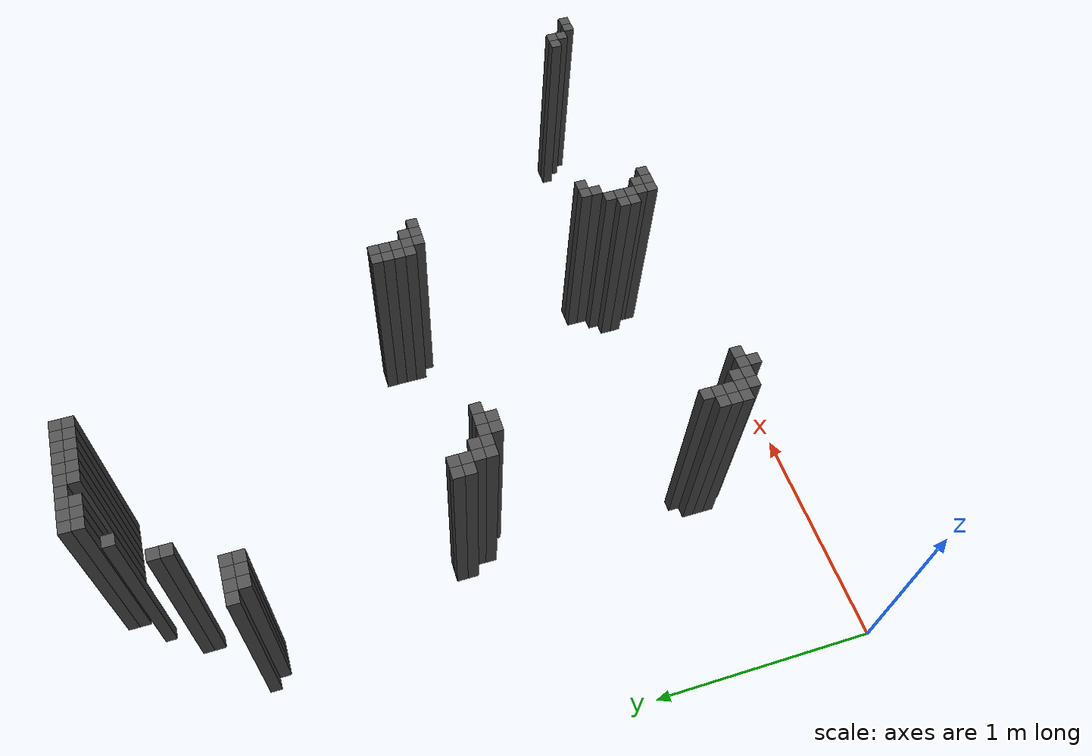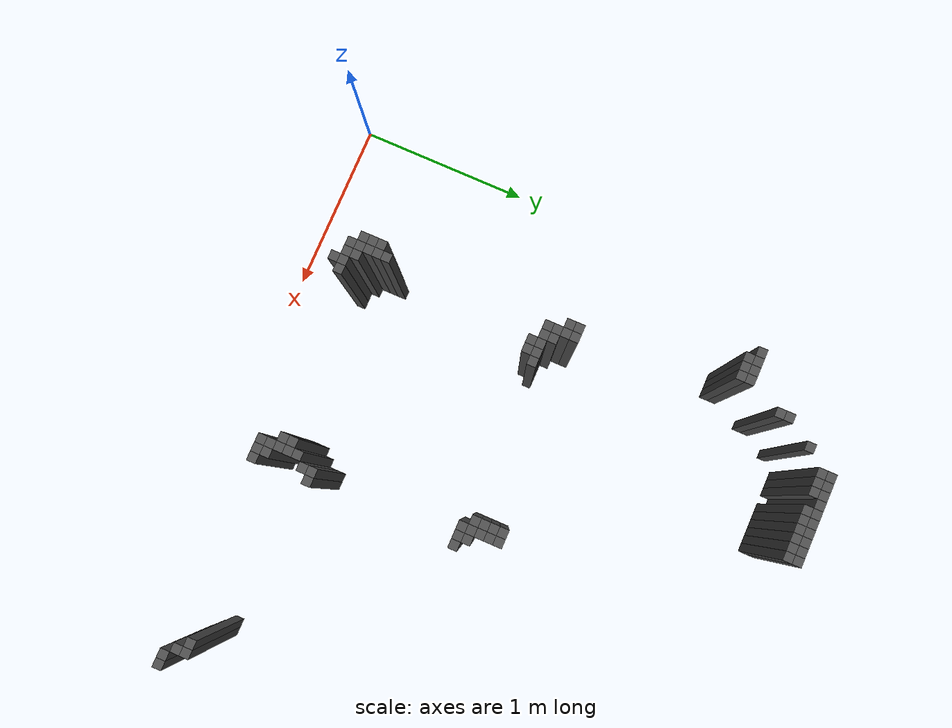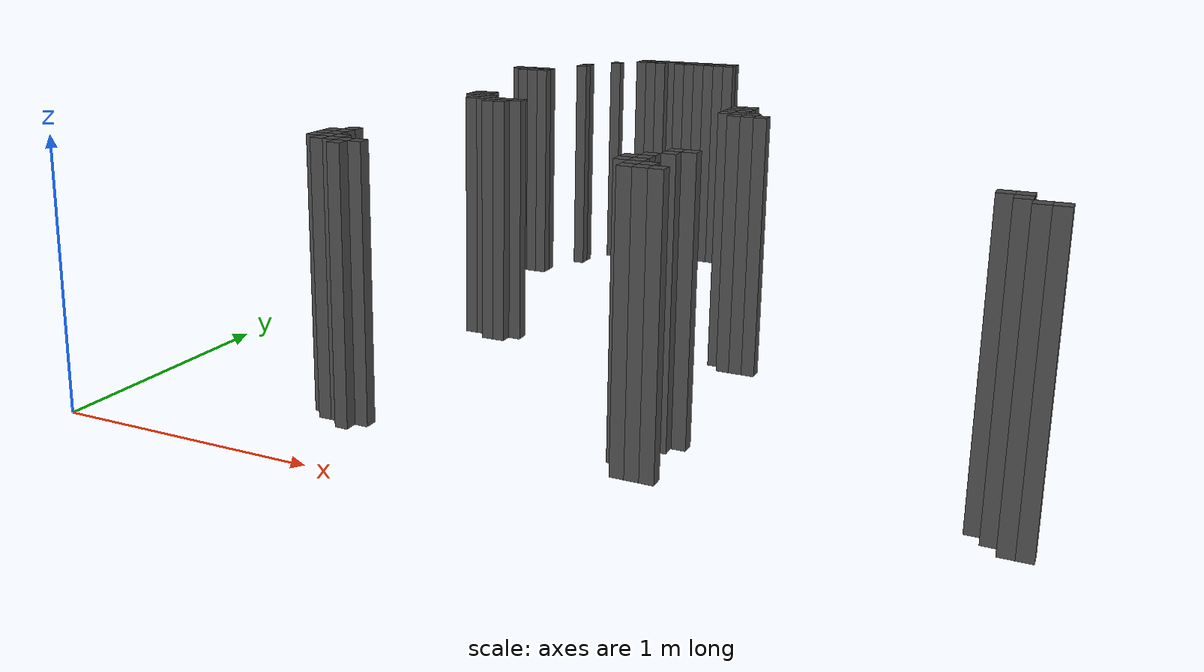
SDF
<sdf version="1.9">
 <world name="house_cleaner">
  <model name="wall_5_43">
   <static>true</static>
   <pose>0.9800 3.0900 0.5 0 0 0</pose>
   <link name="wall_link">
    <collision name="collision"><geometry><box><size>0.05 0.05 1.0</size></box></geometry></collision>
    <visual name="visual">
     <geometry><box><size>0.05 0.05 1.0</size></box></geometry>
     <material><ambient>0.3 0.3 0.3 1</ambient><diffuse>0.3 0.3 0.3 1</diffuse></material>
    </visual>
   </link>
  </model>
  <model name="wall_5_44">
   <static>true</static>
   <pose>1.0300 3.0900 0.5 0 0 0</pose>
   <link name="wall_link">
    <collision name="collision"><geometry><box><size>0.05 0.05 1.0</size></box></geometry></collision>
    <visual name="visual">
     <geometry><box><size>0.05 0.05 1.0</size></box></geometry>
     <material><ambient>0.3 0.3 0.3 1</ambient><diffuse>0.3 0.3 0.3 1</diffuse></material>
    </visual>
   </link>
  </model>
  <model name="wall_5_45">
   <static>true</static>
   <pose>1.0800 3.0900 0.5 0 0 0</pose>
   <link name="wall_link">
    <collision name="collision"><geometry><box><size>0.05 0.05 1.0</size></box></geometry></collision>
    <visual name="visual">
     <geometry><box><size>0.05 0.05 1.0</size></box></geometry>
     <material><ambient>0.3 0.3 0.3 1</ambient><diffuse>0.3 0.3 0.3 1</diffuse></material>
    </visual>
   </link>
  </model>
  <model name="wall_5_46">
   <static>true</static>
   <pose>1.1300 3.0900 0.5 0 0 0</pose>
   <link name="wall_link">
    <collision name="collision"><geometry><box><size>0.05 0.05 1.0</size></box></geometry></collision>
    <visual name="visual">
     <geometry><box><size>0.05 0.05 1.0</size></box></geometry>
     <material><ambient>0.3 0.3 0.3 1</ambient><diffuse>0.3 0.3 0.3 1</diffuse></material>
    </visual>
   </link>
  </model>
  <model name="wall_5_47">
   <static>true</static>
   <pose>1.1800 3.0900 0.5 0 0 0</pose>
   <link name="wall_link">
    <collision name="collision"><geometry><box><size>0.05 0.05 1.0</size></box></geometry></collision>
    <visual name="visual">
     <geometry><box><size>0.05 0.05 1.0</size></box></geometry>
     <material><ambient>0.3 0.3 0.3 1</ambient><diffuse>0.3 0.3 0.3 1</diffuse></material>
    </visual>
   </link>
  </model>
  <model name="wall_5_48">
   <static>true</static>
   <pose>1.2300 3.0900 0.5 0 0 0</pose>
   <link name="wall_link">
    <collision name="collision"><geometry><box><size>0.05 0.05 1.0</size></box></geometry></collision>
    <visual name="visual">
     <geometry><box><size>0.05 0.05 1.0</size></box></geometry>
     <material><ambient>0.3 0.3 0.3 1</ambient><diffuse>0.3 0.3 0.3 1</diffuse></material>
    </visual>
   </link>
  </model>
  <model name="wall_5_49">
   <static>true</static>
   <pose>1.2800 3.0900 0.5 0 0 0</pose>
   <link name="wall_link">
    <collision name="collision"><geometry><box><size>0.05 0.05 1.0</size></box></geometry></collision>
    <visual name="visual">
     <geometry><box><size>0.05 0.05 1.0</size></box></geometry>
     <material><ambient>0.3 0.3 0.3 1</ambient><diffuse>0.3 0.3 0.3 1</diffuse></material>
    </visual>
   </link>
  </model>
  <model name="wall_5_50">
   <static>true</static>
   <pose>1.3300 3.0900 0.5 0 0 0</pose>
   <link name="wall_link">
    <collision name="collision"><geometry><box><size>0.05 0.05 1.0</size></box></geometry></collision>
    <visual name="visual">
     <geometry><box><size>0.05 0.05 1.0</size></box></geometry>
     <material><ambient>0.3 0.3 0.3 1</ambient><diffuse>0.3 0.3 0.3 1</diffuse></material>
    </visual>
   </link>
  </model>
  <model name="wall_5_51">
   <static>true</static>
   <pose>1.3800 3.0900 0.5 0 0 0</pose>
   <link name="wall_link">
    <collision name="collision"><geometry><box><size>0.05 0.05 1.0</size></box></geometry></collision>
    <visual name="visual">
     <geometry><box><size>0.05 0.05 1.0</size></box></geometry>
     <material><ambient>0.3 0.3 0.3 1</ambient><diffuse>0.3 0.3 0.3 1</diffuse></material>
    </visual>
   </link>
  </model>
  <model name="wall_5_52">
   <static>true</static>
   <pose>1.4300 3.0900 0.5 0 0 0</pose>
   <link name="wall_link">
    <collision name="collision"><geometry><box><size>0.05 0.05 1.0</size></box></geometry></collision>
    <visual name="visual">
     <geometry><box><size>0.05 0.05 1.0</size></box></geometry>
     <material><ambient>0.3 0.3 0.3 1</ambient><diffuse>0.3 0.3 0.3 1</diffuse></material>
    </visual>
   </link>
  </model>
  <model name="wall_6_43">
   <static>true</static>
   <pose>0.9800 3.0400 0.5 0 0 0</pose>
   <link name="wall_link">
    <collision name="collision"><geometry><box><size>0.05 0.05 1.0</size></box></geometry></collision>
    <visual name="visual">
     <geometry><box><size>0.05 0.05 1.0</size></box></geometry>
     <material><ambient>0.3 0.3 0.3 1</ambient><diffuse>0.3 0.3 0.3 1</diffuse></material>
    </visual>
   </link>
  </model>
  <model name="wall_6_44">
   <static>true</static>
   <pose>1.0300 3.0400 0.5 0 0 0</pose>
   <link name="wall_link">
    <collision name="collision"><geometry><box><size>0.05 0.05 1.0</size></box></geometry></collision>
    <visual name="visual">
     <geometry><box><size>0.05 0.05 1.0</size></box></geometry>
     <material><ambient>0.3 0.3 0.3 1</ambient><diffuse>0.3 0.3 0.3 1</diffuse></material>
    </visual>
   </link>
  </model>
  <model name="wall_6_45">
   <static>true</static>
   <pose>1.0800 3.0400 0.5 0 0 0</pose>
   <link name="wall_link">
    <collision name="collision"><geometry><box><size>0.05 0.05 1.0</size></box></geometry></collision>
    <visual name="visual">
     <geometry><box><size>0.05 0.05 1.0</size></box></geometry>
     <material><ambient>0.3 0.3 0.3 1</ambient><diffuse>0.3 0.3 0.3 1</diffuse></material>
    </visual>
   </link>
  </model>
  <model name="wall_6_47">
   <static>true</static>
   <pose>1.1800 3.0400 0.5 0 0 0</pose>
   <link name="wall_link">
    <collision name="collision"><geometry><box><size>0.05 0.05 1.0</size></box></geometry></collision>
    <visual name="visual">
     <geometry><box><size>0.05 0.05 1.0</size></box></geometry>
     <material><ambient>0.3 0.3 0.3 1</ambient><diffuse>0.3 0.3 0.3 1</diffuse></material>
    </visual>
   </link>
  </model>
  <model name="wall_6_48">
   <static>true</static>
   <pose>1.2300 3.0400 0.5 0 0 0</pose>
   <link name="wall_link">
    <collision name="collision"><geometry><box><size>0.05 0.05 1.0</size></box></geometry></collision>
    <visual name="visual">
     <geometry><box><size>0.05 0.05 1.0</size></box></geometry>
     <material><ambient>0.3 0.3 0.3 1</ambient><diffuse>0.3 0.3 0.3 1</diffuse></material>
    </visual>
   </link>
  </model>
  <model name="wall_6_49">
   <static>true</static>
   <pose>1.2800 3.0400 0.5 0 0 0</pose>
   <link name="wall_link">
    <collision name="collision"><geometry><box><size>0.05 0.05 1.0</size></box></geometry></collision>
    <visual name="visual">
     <geometry><box><size>0.05 0.05 1.0</size></box></geometry>
     <material><ambient>0.3 0.3 0.3 1</ambient><diffuse>0.3 0.3 0.3 1</diffuse></material>
    </visual>
   </link>
  </model>
  <model name="wall_6_50">
   <static>true</static>
   <pose>1.3300 3.0400 0.5 0 0 0</pose>
   <link name="wall_link">
    <collision name="collision"><geometry><box><size>0.05 0.05 1.0</size></box></geometry></collision>
    <visual name="visual">
     <geometry><box><size>0.05 0.05 1.0</size></box></geometry>
     <material><ambient>0.3 0.3 0.3 1</ambient><diffuse>0.3 0.3 0.3 1</diffuse></material>
    </visual>
   </link>
  </model>
  <model name="wall_6_51">
   <static>true</static>
   <pose>1.3800 3.0400 0.5 0 0 0</pose>
   <link name="wall_link">
    <collision name="collision"><geometry><box><size>0.05 0.05 1.0</size></box></geometry></collision>
    <visual name="visual">
     <geometry><box><size>0.05 0.05 1.0</size></box></geometry>
     <material><ambient>0.3 0.3 0.3 1</ambient><diffuse>0.3 0.3 0.3 1</diffuse></material>
    </visual>
   </link>
  </model>
  <model name="wall_6_52">
   <static>true</static>
   <pose>1.4300 3.0400 0.5 0 0 0</pose>
   <link name="wall_link">
    <collision name="collision"><geometry><box><size>0.05 0.05 1.0</size></box></geometry></collision>
    <visual name="visual">
     <geometry><box><size>0.05 0.05 1.0</size></box></geometry>
     <material><ambient>0.3 0.3 0.3 1</ambient><diffuse>0.3 0.3 0.3 1</diffuse></material>
    </visual>
   </link>
  </model>
  <model name="wall_8_41">
   <static>true</static>
   <pose>0.8800 2.9400 0.5 0 0 0</pose>
   <link name="wall_link">
    <collision name="collision"><geometry><box><size>0.05 0.05 1.0</size></box></geometry></collision>
    <visual name="visual">
     <geometry><box><size>0.05 0.05 1.0</size></box></geometry>
     <material><ambient>0.3 0.3 0.3 1</ambient><diffuse>0.3 0.3 0.3 1</diffuse></material>
    </visual>
   </link>
  </model>
  <model name="wall_11_39">
   <static>true</static>
   <pose>0.7800 2.7900 0.5 0 0 0</pose>
   <link name="wall_link">
    <collision name="collision"><geometry><box><size>0.05 0.05 1.0</size></box></geometry></collision>
    <visual name="visual">
     <geometry><box><size>0.05 0.05 1.0</size></box></geometry>
     <material><ambient>0.3 0.3 0.3 1</ambient><diffuse>0.3 0.3 0.3 1</diffuse></material>
    </visual>
   </link>
  </model>
  <model name="wall_12_39">
   <static>true</static>
   <pose>0.7800 2.7400 0.5 0 0 0</pose>
   <link name="wall_link">
    <collision name="collision"><geometry><box><size>0.05 0.05 1.0</size></box></geometry></collision>
    <visual name="visual">
     <geometry><box><size>0.05 0.05 1.0</size></box></geometry>
     <material><ambient>0.3 0.3 0.3 1</ambient><diffuse>0.3 0.3 0.3 1</diffuse></material>
    </visual>
   </link>
  </model>
  <model name="wall_16_34">
   <static>true</static>
   <pose>0.5300 2.5400 0.5 0 0 0</pose>
   <link name="wall_link">
    <collision name="collision"><geometry><box><size>0.05 0.05 1.0</size></box></geometry></collision>
    <visual name="visual">
     <geometry><box><size>0.05 0.05 1.0</size></box></geometry>
     <material><ambient>0.3 0.3 0.3 1</ambient><diffuse>0.3 0.3 0.3 1</diffuse></material>
    </visual>
   </link>
  </model>
  <model name="wall_16_35">
   <static>true</static>
   <pose>0.5800 2.5400 0.5 0 0 0</pose>
   <link name="wall_link">
    <collision name="collision"><geometry><box><size>0.05 0.05 1.0</size></box></geometry></collision>
    <visual name="visual">
     <geometry><box><size>0.05 0.05 1.0</size></box></geometry>
     <material><ambient>0.3 0.3 0.3 1</ambient><diffuse>0.3 0.3 0.3 1</diffuse></material>
    </visual>
   </link>
  </model>
  <model name="wall_16_36">
   <static>true</static>
   <pose>0.6300 2.5400 0.5 0 0 0</pose>
   <link name="wall_link">
    <collision name="collision"><geometry><box><size>0.05 0.05 1.0</size></box></geometry></collision>
    <visual name="visual">
     <geometry><box><size>0.05 0.05 1.0</size></box></geometry>
     <material><ambient>0.3 0.3 0.3 1</ambient><diffuse>0.3 0.3 0.3 1</diffuse></material>
    </visual>
   </link>
  </model>
  <model name="wall_16_37">
   <static>true</static>
   <pose>0.6800 2.5400 0.5 0 0 0</pose>
   <link name="wall_link">
    <collision name="collision"><geometry><box><size>0.05 0.05 1.0</size></box></geometry></collision>
    <visual name="visual">
     <geometry><box><size>0.05 0.05 1.0</size></box></geometry>
     <material><ambient>0.3 0.3 0.3 1</ambient><diffuse>0.3 0.3 0.3 1</diffuse></material>
    </visual>
   </link>
  </model>
  <model name="wall_17_35">
   <static>true</static>
   <pose>0.5800 2.4900 0.5 0 0 0</pose>
   <link name="wall_link">
    <collision name="collision"><geometry><box><size>0.05 0.05 1.0</size></box></geometry></collision>
    <visual name="visual">
     <geometry><box><size>0.05 0.05 1.0</size></box></geometry>
     <material><ambient>0.3 0.3 0.3 1</ambient><diffuse>0.3 0.3 0.3 1</diffuse></material>
    </visual>
   </link>
  </model>
  <model name="wall_17_36">
   <static>true</static>
   <pose>0.6300 2.4900 0.5 0 0 0</pose>
   <link name="wall_link">
    <collision name="collision"><geometry><box><size>0.05 0.05 1.0</size></box></geometry></collision>
    <visual name="visual">
     <geometry><box><size>0.05 0.05 1.0</size></box></geometry>
     <material><ambient>0.3 0.3 0.3 1</ambient><diffuse>0.3 0.3 0.3 1</diffuse></material>
    </visual>
   </link>
  </model>
  <model name="wall_17_37">
   <static>true</static>
   <pose>0.6800 2.4900 0.5 0 0 0</pose>
   <link name="wall_link">
    <collision name="collision"><geometry><box><size>0.05 0.05 1.0</size></box></geometry></collision>
    <visual name="visual">
     <geometry><box><size>0.05 0.05 1.0</size></box></geometry>
     <material><ambient>0.3 0.3 0.3 1</ambient><diffuse>0.3 0.3 0.3 1</diffuse></material>
    </visual>
   </link>
  </model>
  <model name="wall_33_61">
   <static>true</static>
   <pose>1.8800 1.6900 0.5 0 0 0</pose>
   <link name="wall_link">
    <collision name="collision"><geometry><box><size>0.05 0.05 1.0</size></box></geometry></collision>
    <visual name="visual">
     <geometry><box><size>0.05 0.05 1.0</size></box></geometry>
     <material><ambient>0.3 0.3 0.3 1</ambient><diffuse>0.3 0.3 0.3 1</diffuse></material>
    </visual>
   </link>
  </model>
  <model name="wall_33_62">
   <static>true</static>
   <pose>1.9300 1.6900 0.5 0 0 0</pose>
   <link name="wall_link">
    <collision name="collision"><geometry><box><size>0.05 0.05 1.0</size></box></geometry></collision>
    <visual name="visual">
     <geometry><box><size>0.05 0.05 1.0</size></box></geometry>
     <material><ambient>0.3 0.3 0.3 1</ambient><diffuse>0.3 0.3 0.3 1</diffuse></material>
    </visual>
   </link>
  </model>
  <model name="wall_34_39">
   <static>true</static>
   <pose>0.7800 1.6400 0.5 0 0 0</pose>
   <link name="wall_link">
    <collision name="collision"><geometry><box><size>0.05 0.05 1.0</size></box></geometry></collision>
    <visual name="visual">
     <geometry><box><size>0.05 0.05 1.0</size></box></geometry>
     <material><ambient>0.3 0.3 0.3 1</ambient><diffuse>0.3 0.3 0.3 1</diffuse></material>
    </visual>
   </link>
  </model>
  <model name="wall_34_40">
   <static>true</static>
   <pose>0.8300 1.6400 0.5 0 0 0</pose>
   <link name="wall_link">
    <collision name="collision"><geometry><box><size>0.05 0.05 1.0</size></box></geometry></collision>
    <visual name="visual">
     <geometry><box><size>0.05 0.05 1.0</size></box></geometry>
     <material><ambient>0.3 0.3 0.3 1</ambient><diffuse>0.3 0.3 0.3 1</diffuse></material>
    </visual>
   </link>
  </model>
  <model name="wall_34_61">
   <static>true</static>
   <pose>1.8800 1.6400 0.5 0 0 0</pose>
   <link name="wall_link">
    <collision name="collision"><geometry><box><size>0.05 0.05 1.0</size></box></geometry></collision>
    <visual name="visual">
     <geometry><box><size>0.05 0.05 1.0</size></box></geometry>
     <material><ambient>0.3 0.3 0.3 1</ambient><diffuse>0.3 0.3 0.3 1</diffuse></material>
    </visual>
   </link>
  </model>
  <model name="wall_34_62">
   <static>true</static>
   <pose>1.9300 1.6400 0.5 0 0 0</pose>
   <link name="wall_link">
    <collision name="collision"><geometry><box><size>0.05 0.05 1.0</size></box></geometry></collision>
    <visual name="visual">
     <geometry><box><size>0.05 0.05 1.0</size></box></geometry>
     <material><ambient>0.3 0.3 0.3 1</ambient><diffuse>0.3 0.3 0.3 1</diffuse></material>
    </visual>
   </link>
  </model>
  <model name="wall_35_39">
   <static>true</static>
   <pose>0.7800 1.5900 0.5 0 0 0</pose>
   <link name="wall_link">
    <collision name="collision"><geometry><box><size>0.05 0.05 1.0</size></box></geometry></collision>
    <visual name="visual">
     <geometry><box><size>0.05 0.05 1.0</size></box></geometry>
     <material><ambient>0.3 0.3 0.3 1</ambient><diffuse>0.3 0.3 0.3 1</diffuse></material>
    </visual>
   </link>
  </model>
  <model name="wall_35_40">
   <static>true</static>
   <pose>0.8300 1.5900 0.5 0 0 0</pose>
   <link name="wall_link">
    <collision name="collision"><geometry><box><size>0.05 0.05 1.0</size></box></geometry></collision>
    <visual name="visual">
     <geometry><box><size>0.05 0.05 1.0</size></box></geometry>
     <material><ambient>0.3 0.3 0.3 1</ambient><diffuse>0.3 0.3 0.3 1</diffuse></material>
    </visual>
   </link>
  </model>
  <model name="wall_35_61">
   <static>true</static>
   <pose>1.8800 1.5900 0.5 0 0 0</pose>
   <link name="wall_link">
    <collision name="collision"><geometry><box><size>0.05 0.05 1.0</size></box></geometry></collision>
    <visual name="visual">
     <geometry><box><size>0.05 0.05 1.0</size></box></geometry>
     <material><ambient>0.3 0.3 0.3 1</ambient><diffuse>0.3 0.3 0.3 1</diffuse></material>
    </visual>
   </link>
  </model>
  <model name="wall_35_62">
   <static>true</static>
   <pose>1.9300 1.5900 0.5 0 0 0</pose>
   <link name="wall_link">
    <collision name="collision"><geometry><box><size>0.05 0.05 1.0</size></box></geometry></collision>
    <visual name="visual">
     <geometry><box><size>0.05 0.05 1.0</size></box></geometry>
     <material><ambient>0.3 0.3 0.3 1</ambient><diffuse>0.3 0.3 0.3 1</diffuse></material>
    </visual>
   </link>
  </model>
  <model name="wall_36_40">
   <static>true</static>
   <pose>0.8300 1.5400 0.5 0 0 0</pose>
   <link name="wall_link">
    <collision name="collision"><geometry><box><size>0.05 0.05 1.0</size></box></geometry></collision>
    <visual name="visual">
     <geometry><box><size>0.05 0.05 1.0</size></box></geometry>
     <material><ambient>0.3 0.3 0.3 1</ambient><diffuse>0.3 0.3 0.3 1</diffuse></material>
    </visual>
   </link>
  </model>
  <model name="wall_36_41">
   <static>true</static>
   <pose>0.8800 1.5400 0.5 0 0 0</pose>
   <link name="wall_link">
    <collision name="collision"><geometry><box><size>0.05 0.05 1.0</size></box></geometry></collision>
    <visual name="visual">
     <geometry><box><size>0.05 0.05 1.0</size></box></geometry>
     <material><ambient>0.3 0.3 0.3 1</ambient><diffuse>0.3 0.3 0.3 1</diffuse></material>
    </visual>
   </link>
  </model>
  <model name="wall_36_61">
   <static>true</static>
   <pose>1.8800 1.5400 0.5 0 0 0</pose>
   <link name="wall_link">
    <collision name="collision"><geometry><box><size>0.05 0.05 1.0</size></box></geometry></collision>
    <visual name="visual">
     <geometry><box><size>0.05 0.05 1.0</size></box></geometry>
     <material><ambient>0.3 0.3 0.3 1</ambient><diffuse>0.3 0.3 0.3 1</diffuse></material>
    </visual>
   </link>
  </model>
  <model name="wall_36_62">
   <static>true</static>
   <pose>1.9300 1.5400 0.5 0 0 0</pose>
   <link name="wall_link">
    <collision name="collision"><geometry><box><size>0.05 0.05 1.0</size></box></geometry></collision>
    <visual name="visual">
     <geometry><box><size>0.05 0.05 1.0</size></box></geometry>
     <material><ambient>0.3 0.3 0.3 1</ambient><diffuse>0.3 0.3 0.3 1</diffuse></material>
    </visual>
   </link>
  </model>
  <model name="wall_36_63">
   <static>true</static>
   <pose>1.9800 1.5400 0.5 0 0 0</pose>
   <link name="wall_link">
    <collision name="collision"><geometry><box><size>0.05 0.05 1.0</size></box></geometry></collision>
    <visual name="visual">
     <geometry><box><size>0.05 0.05 1.0</size></box></geometry>
     <material><ambient>0.3 0.3 0.3 1</ambient><diffuse>0.3 0.3 0.3 1</diffuse></material>
    </visual>
   </link>
  </model>
  <model name="wall_37_40">
   <static>true</static>
   <pose>0.8300 1.4900 0.5 0 0 0</pose>
   <link name="wall_link">
    <collision name="collision"><geometry><box><size>0.05 0.05 1.0</size></box></geometry></collision>
    <visual name="visual">
     <geometry><box><size>0.05 0.05 1.0</size></box></geometry>
     <material><ambient>0.3 0.3 0.3 1</ambient><diffuse>0.3 0.3 0.3 1</diffuse></material>
    </visual>
   </link>
  </model>
  <model name="wall_37_41">
   <static>true</static>
   <pose>0.8800 1.4900 0.5 0 0 0</pose>
   <link name="wall_link">
    <collision name="collision"><geometry><box><size>0.05 0.05 1.0</size></box></geometry></collision>
    <visual name="visual">
     <geometry><box><size>0.05 0.05 1.0</size></box></geometry>
     <material><ambient>0.3 0.3 0.3 1</ambient><diffuse>0.3 0.3 0.3 1</diffuse></material>
    </visual>
   </link>
  </model>
  <model name="wall_37_42">
   <static>true</static>
   <pose>0.9300 1.4900 0.5 0 0 0</pose>
   <link name="wall_link">
    <collision name="collision"><geometry><box><size>0.05 0.05 1.0</size></box></geometry></collision>
    <visual name="visual">
     <geometry><box><size>0.05 0.05 1.0</size></box></geometry>
     <material><ambient>0.3 0.3 0.3 1</ambient><diffuse>0.3 0.3 0.3 1</diffuse></material>
    </visual>
   </link>
  </model>
  <model name="wall_37_43">
   <static>true</static>
   <pose>0.9800 1.4900 0.5 0 0 0</pose>
   <link name="wall_link">
    <collision name="collision"><geometry><box><size>0.05 0.05 1.0</size></box></geometry></collision>
    <visual name="visual">
     <geometry><box><size>0.05 0.05 1.0</size></box></geometry>
     <material><ambient>0.3 0.3 0.3 1</ambient><diffuse>0.3 0.3 0.3 1</diffuse></material>
    </visual>
   </link>
  </model>
  <model name="wall_37_44">
   <static>true</static>
   <pose>1.0300 1.4900 0.5 0 0 0</pose>
   <link name="wall_link">
    <collision name="collision"><geometry><box><size>0.05 0.05 1.0</size></box></geometry></collision>
    <visual name="visual">
     <geometry><box><size>0.05 0.05 1.0</size></box></geometry>
     <material><ambient>0.3 0.3 0.3 1</ambient><diffuse>0.3 0.3 0.3 1</diffuse></material>
    </visual>
   </link>
  </model>
  <model name="wall_37_62">
   <static>true</static>
   <pose>1.9300 1.4900 0.5 0 0 0</pose>
   <link name="wall_link">
    <collision name="collision"><geometry><box><size>0.05 0.05 1.0</size></box></geometry></collision>
    <visual name="visual">
     <geometry><box><size>0.05 0.05 1.0</size></box></geometry>
     <material><ambient>0.3 0.3 0.3 1</ambient><diffuse>0.3 0.3 0.3 1</diffuse></material>
    </visual>
   </link>
  </model>
  <model name="wall_37_63">
   <static>true</static>
   <pose>1.9800 1.4900 0.5 0 0 0</pose>
   <link name="wall_link">
    <collision name="collision"><geometry><box><size>0.05 0.05 1.0</size></box></geometry></collision>
    <visual name="visual">
     <geometry><box><size>0.05 0.05 1.0</size></box></geometry>
     <material><ambient>0.3 0.3 0.3 1</ambient><diffuse>0.3 0.3 0.3 1</diffuse></material>
    </visual>
   </link>
  </model>
  <model name="wall_37_64">
   <static>true</static>
   <pose>2.0300 1.4900 0.5 0 0 0</pose>
   <link name="wall_link">
    <collision name="collision"><geometry><box><size>0.05 0.05 1.0</size></box></geometry></collision>
    <visual name="visual">
     <geometry><box><size>0.05 0.05 1.0</size></box></geometry>
     <material><ambient>0.3 0.3 0.3 1</ambient><diffuse>0.3 0.3 0.3 1</diffuse></material>
    </visual>
   </link>
  </model>
  <model name="wall_38_42">
   <static>true</static>
   <pose>0.9300 1.4400 0.5 0 0 0</pose>
   <link name="wall_link">
    <collision name="collision"><geometry><box><size>0.05 0.05 1.0</size></box></geometry></collision>
    <visual name="visual">
     <geometry><box><size>0.05 0.05 1.0</size></box></geometry>
     <material><ambient>0.3 0.3 0.3 1</ambient><diffuse>0.3 0.3 0.3 1</diffuse></material>
    </visual>
   </link>
  </model>
  <model name="wall_38_43">
   <static>true</static>
   <pose>0.9800 1.4400 0.5 0 0 0</pose>
   <link name="wall_link">
    <collision name="collision"><geometry><box><size>0.05 0.05 1.0</size></box></geometry></collision>
    <visual name="visual">
     <geometry><box><size>0.05 0.05 1.0</size></box></geometry>
     <material><ambient>0.3 0.3 0.3 1</ambient><diffuse>0.3 0.3 0.3 1</diffuse></material>
    </visual>
   </link>
  </model>
  <model name="wall_53_63">
   <static>true</static>
   <pose>1.9800 0.6900 0.5 0 0 0</pose>
   <link name="wall_link">
    <collision name="collision"><geometry><box><size>0.05 0.05 1.0</size></box></geometry></collision>
    <visual name="visual">
     <geometry><box><size>0.05 0.05 1.0</size></box></geometry>
     <material><ambient>0.3 0.3 0.3 1</ambient><diffuse>0.3 0.3 0.3 1</diffuse></material>
    </visual>
   </link>
  </model>
  <model name="wall_53_64">
   <static>true</static>
   <pose>2.0300 0.6900 0.5 0 0 0</pose>
   <link name="wall_link">
    <collision name="collision"><geometry><box><size>0.05 0.05 1.0</size></box></geometry></collision>
    <visual name="visual">
     <geometry><box><size>0.05 0.05 1.0</size></box></geometry>
     <material><ambient>0.3 0.3 0.3 1</ambient><diffuse>0.3 0.3 0.3 1</diffuse></material>
    </visual>
   </link>
  </model>
  <model name="wall_54_63">
   <static>true</static>
   <pose>1.9800 0.6400 0.5 0 0 0</pose>
   <link name="wall_link">
    <collision name="collision"><geometry><box><size>0.05 0.05 1.0</size></box></geometry></collision>
    <visual name="visual">
     <geometry><box><size>0.05 0.05 1.0</size></box></geometry>
     <material><ambient>0.3 0.3 0.3 1</ambient><diffuse>0.3 0.3 0.3 1</diffuse></material>
    </visual>
   </link>
  </model>
  <model name="wall_55_40">
   <static>true</static>
   <pose>0.8300 0.5900 0.5 0 0 0</pose>
   <link name="wall_link">
    <collision name="collision"><geometry><box><size>0.05 0.05 1.0</size></box></geometry></collision>
    <visual name="visual">
     <geometry><box><size>0.05 0.05 1.0</size></box></geometry>
     <material><ambient>0.3 0.3 0.3 1</ambient><diffuse>0.3 0.3 0.3 1</diffuse></material>
    </visual>
   </link>
  </model>
  <model name="wall_55_62">
   <static>true</static>
   <pose>1.9300 0.5900 0.5 0 0 0</pose>
   <link name="wall_link">
    <collision name="collision"><geometry><box><size>0.05 0.05 1.0</size></box></geometry></collision>
    <visual name="visual">
     <geometry><box><size>0.05 0.05 1.0</size></box></geometry>
     <material><ambient>0.3 0.3 0.3 1</ambient><diffuse>0.3 0.3 0.3 1</diffuse></material>
    </visual>
   </link>
  </model>
  <model name="wall_56_39">
   <static>true</static>
   <pose>0.7800 0.5400 0.5 0 0 0</pose>
   <link name="wall_link">
    <collision name="collision"><geometry><box><size>0.05 0.05 1.0</size></box></geometry></collision>
    <visual name="visual">
     <geometry><box><size>0.05 0.05 1.0</size></box></geometry>
     <material><ambient>0.3 0.3 0.3 1</ambient><diffuse>0.3 0.3 0.3 1</diffuse></material>
    </visual>
   </link>
  </model>
  <model name="wall_56_40">
   <static>true</static>
   <pose>0.8300 0.5400 0.5 0 0 0</pose>
   <link name="wall_link">
    <collision name="collision"><geometry><box><size>0.05 0.05 1.0</size></box></geometry></collision>
    <visual name="visual">
     <geometry><box><size>0.05 0.05 1.0</size></box></geometry>
     <material><ambient>0.3 0.3 0.3 1</ambient><diffuse>0.3 0.3 0.3 1</diffuse></material>
    </visual>
   </link>
  </model>
  <model name="wall_56_61">
   <static>true</static>
   <pose>1.8800 0.5400 0.5 0 0 0</pose>
   <link name="wall_link">
    <collision name="collision"><geometry><box><size>0.05 0.05 1.0</size></box></geometry></collision>
    <visual name="visual">
     <geometry><box><size>0.05 0.05 1.0</size></box></geometry>
     <material><ambient>0.3 0.3 0.3 1</ambient><diffuse>0.3 0.3 0.3 1</diffuse></material>
    </visual>
   </link>
  </model>
  <model name="wall_56_62">
   <static>true</static>
   <pose>1.9300 0.5400 0.5 0 0 0</pose>
   <link name="wall_link">
    <collision name="collision"><geometry><box><size>0.05 0.05 1.0</size></box></geometry></collision>
    <visual name="visual">
     <geometry><box><size>0.05 0.05 1.0</size></box></geometry>
     <material><ambient>0.3 0.3 0.3 1</ambient><diffuse>0.3 0.3 0.3 1</diffuse></material>
    </visual>
   </link>
  </model>
  <model name="wall_57_39">
   <static>true</static>
   <pose>0.7800 0.4900 0.5 0 0 0</pose>
   <link name="wall_link">
    <collision name="collision"><geometry><box><size>0.05 0.05 1.0</size></box></geometry></collision>
    <visual name="visual">
     <geometry><box><size>0.05 0.05 1.0</size></box></geometry>
     <material><ambient>0.3 0.3 0.3 1</ambient><diffuse>0.3 0.3 0.3 1</diffuse></material>
    </visual>
   </link>
  </model>
  <model name="wall_57_40">
   <static>true</static>
   <pose>0.8300 0.4900 0.5 0 0 0</pose>
   <link name="wall_link">
    <collision name="collision"><geometry><box><size>0.05 0.05 1.0</size></box></geometry></collision>
    <visual name="visual">
     <geometry><box><size>0.05 0.05 1.0</size></box></geometry>
     <material><ambient>0.3 0.3 0.3 1</ambient><diffuse>0.3 0.3 0.3 1</diffuse></material>
    </visual>
   </link>
  </model>
  <model name="wall_57_61">
   <static>true</static>
   <pose>1.8800 0.4900 0.5 0 0 0</pose>
   <link name="wall_link">
    <collision name="collision"><geometry><box><size>0.05 0.05 1.0</size></box></geometry></collision>
    <visual name="visual">
     <geometry><box><size>0.05 0.05 1.0</size></box></geometry>
     <material><ambient>0.3 0.3 0.3 1</ambient><diffuse>0.3 0.3 0.3 1</diffuse></material>
    </visual>
   </link>
  </model>
  <model name="wall_57_62">
   <static>true</static>
   <pose>1.9300 0.4900 0.5 0 0 0</pose>
   <link name="wall_link">
    <collision name="collision"><geometry><box><size>0.05 0.05 1.0</size></box></geometry></collision>
    <visual name="visual">
     <geometry><box><size>0.05 0.05 1.0</size></box></geometry>
     <material><ambient>0.3 0.3 0.3 1</ambient><diffuse>0.3 0.3 0.3 1</diffuse></material>
    </visual>
   </link>
  </model>
  <model name="wall_57_83">
   <static>true</static>
   <pose>2.9800 0.4900 0.5 0 0 0</pose>
   <link name="wall_link">
    <collision name="collision"><geometry><box><size>0.05 0.05 1.0</size></box></geometry></collision>
    <visual name="visual">
     <geometry><box><size>0.05 0.05 1.0</size></box></geometry>
     <material><ambient>0.3 0.3 0.3 1</ambient><diffuse>0.3 0.3 0.3 1</diffuse></material>
    </visual>
   </link>
  </model>
  <model name="wall_57_84">
   <static>true</static>
   <pose>3.0300 0.4900 0.5 0 0 0</pose>
   <link name="wall_link">
    <collision name="collision"><geometry><box><size>0.05 0.05 1.0</size></box></geometry></collision>
    <visual name="visual">
     <geometry><box><size>0.05 0.05 1.0</size></box></geometry>
     <material><ambient>0.3 0.3 0.3 1</ambient><diffuse>0.3 0.3 0.3 1</diffuse></material>
    </visual>
   </link>
  </model>
  <model name="wall_58_39">
   <static>true</static>
   <pose>0.7800 0.4400 0.5 0 0 0</pose>
   <link name="wall_link">
    <collision name="collision"><geometry><box><size>0.05 0.05 1.0</size></box></geometry></collision>
    <visual name="visual">
     <geometry><box><size>0.05 0.05 1.0</size></box></geometry>
     <material><ambient>0.3 0.3 0.3 1</ambient><diffuse>0.3 0.3 0.3 1</diffuse></material>
    </visual>
   </link>
  </model>
  <model name="wall_58_40">
   <static>true</static>
   <pose>0.8300 0.4400 0.5 0 0 0</pose>
   <link name="wall_link">
    <collision name="collision"><geometry><box><size>0.05 0.05 1.0</size></box></geometry></collision>
    <visual name="visual">
     <geometry><box><size>0.05 0.05 1.0</size></box></geometry>
     <material><ambient>0.3 0.3 0.3 1</ambient><diffuse>0.3 0.3 0.3 1</diffuse></material>
    </visual>
   </link>
  </model>
  <model name="wall_58_41">
   <static>true</static>
   <pose>0.8800 0.4400 0.5 0 0 0</pose>
   <link name="wall_link">
    <collision name="collision"><geometry><box><size>0.05 0.05 1.0</size></box></geometry></collision>
    <visual name="visual">
     <geometry><box><size>0.05 0.05 1.0</size></box></geometry>
     <material><ambient>0.3 0.3 0.3 1</ambient><diffuse>0.3 0.3 0.3 1</diffuse></material>
    </visual>
   </link>
  </model>
  <model name="wall_58_62">
   <static>true</static>
   <pose>1.9300 0.4400 0.5 0 0 0</pose>
   <link name="wall_link">
    <collision name="collision"><geometry><box><size>0.05 0.05 1.0</size></box></geometry></collision>
    <visual name="visual">
     <geometry><box><size>0.05 0.05 1.0</size></box></geometry>
     <material><ambient>0.3 0.3 0.3 1</ambient><diffuse>0.3 0.3 0.3 1</diffuse></material>
    </visual>
   </link>
  </model>
  <model name="wall_58_63">
   <static>true</static>
   <pose>1.9800 0.4400 0.5 0 0 0</pose>
   <link name="wall_link">
    <collision name="collision"><geometry><box><size>0.05 0.05 1.0</size></box></geometry></collision>
    <visual name="visual">
     <geometry><box><size>0.05 0.05 1.0</size></box></geometry>
     <material><ambient>0.3 0.3 0.3 1</ambient><diffuse>0.3 0.3 0.3 1</diffuse></material>
    </visual>
   </link>
  </model>
  <model name="wall_58_84">
   <static>true</static>
   <pose>3.0300 0.4400 0.5 0 0 0</pose>
   <link name="wall_link">
    <collision name="collision"><geometry><box><size>0.05 0.05 1.0</size></box></geometry></collision>
    <visual name="visual">
     <geometry><box><size>0.05 0.05 1.0</size></box></geometry>
     <material><ambient>0.3 0.3 0.3 1</ambient><diffuse>0.3 0.3 0.3 1</diffuse></material>
    </visual>
   </link>
  </model>
  <model name="wall_59_40">
   <static>true</static>
   <pose>0.8300 0.3900 0.5 0 0 0</pose>
   <link name="wall_link">
    <collision name="collision"><geometry><box><size>0.05 0.05 1.0</size></box></geometry></collision>
    <visual name="visual">
     <geometry><box><size>0.05 0.05 1.0</size></box></geometry>
     <material><ambient>0.3 0.3 0.3 1</ambient><diffuse>0.3 0.3 0.3 1</diffuse></material>
    </visual>
   </link>
  </model>
  <model name="wall_59_41">
   <static>true</static>
   <pose>0.8800 0.3900 0.5 0 0 0</pose>
   <link name="wall_link">
    <collision name="collision"><geometry><box><size>0.05 0.05 1.0</size></box></geometry></collision>
    <visual name="visual">
     <geometry><box><size>0.05 0.05 1.0</size></box></geometry>
     <material><ambient>0.3 0.3 0.3 1</ambient><diffuse>0.3 0.3 0.3 1</diffuse></material>
    </visual>
   </link>
  </model>
  <model name="wall_59_42">
   <static>true</static>
   <pose>0.9300 0.3900 0.5 0 0 0</pose>
   <link name="wall_link">
    <collision name="collision"><geometry><box><size>0.05 0.05 1.0</size></box></geometry></collision>
    <visual name="visual">
     <geometry><box><size>0.05 0.05 1.0</size></box></geometry>
     <material><ambient>0.3 0.3 0.3 1</ambient><diffuse>0.3 0.3 0.3 1</diffuse></material>
    </visual>
   </link>
  </model>
  <model name="wall_59_43">
   <static>true</static>
   <pose>0.9800 0.3900 0.5 0 0 0</pose>
   <link name="wall_link">
    <collision name="collision"><geometry><box><size>0.05 0.05 1.0</size></box></geometry></collision>
    <visual name="visual">
     <geometry><box><size>0.05 0.05 1.0</size></box></geometry>
     <material><ambient>0.3 0.3 0.3 1</ambient><diffuse>0.3 0.3 0.3 1</diffuse></material>
    </visual>
   </link>
  </model>
  <model name="wall_59_62">
   <static>true</static>
   <pose>1.9300 0.3900 0.5 0 0 0</pose>
   <link name="wall_link">
    <collision name="collision"><geometry><box><size>0.05 0.05 1.0</size></box></geometry></collision>
    <visual name="visual">
     <geometry><box><size>0.05 0.05 1.0</size></box></geometry>
     <material><ambient>0.3 0.3 0.3 1</ambient><diffuse>0.3 0.3 0.3 1</diffuse></material>
    </visual>
   </link>
  </model>
  <model name="wall_59_63">
   <static>true</static>
   <pose>1.9800 0.3900 0.5 0 0 0</pose>
   <link name="wall_link">
    <collision name="collision"><geometry><box><size>0.05 0.05 1.0</size></box></geometry></collision>
    <visual name="visual">
     <geometry><box><size>0.05 0.05 1.0</size></box></geometry>
     <material><ambient>0.3 0.3 0.3 1</ambient><diffuse>0.3 0.3 0.3 1</diffuse></material>
    </visual>
   </link>
  </model>
  <model name="wall_59_64">
   <static>true</static>
   <pose>2.0300 0.3900 0.5 0 0 0</pose>
   <link name="wall_link">
    <collision name="collision"><geometry><box><size>0.05 0.05 1.0</size></box></geometry></collision>
    <visual name="visual">
     <geometry><box><size>0.05 0.05 1.0</size></box></geometry>
     <material><ambient>0.3 0.3 0.3 1</ambient><diffuse>0.3 0.3 0.3 1</diffuse></material>
    </visual>
   </link>
  </model>
  <model name="wall_59_85">
   <static>true</static>
   <pose>3.0800 0.3900 0.5 0 0 0</pose>
   <link name="wall_link">
    <collision name="collision"><geometry><box><size>0.05 0.05 1.0</size></box></geometry></collision>
    <visual name="visual">
     <geometry><box><size>0.05 0.05 1.0</size></box></geometry>
     <material><ambient>0.3 0.3 0.3 1</ambient><diffuse>0.3 0.3 0.3 1</diffuse></material>
    </visual>
   </link>
  </model>
  <model name="wall_59_86">
   <static>true</static>
   <pose>3.1300 0.3900 0.5 0 0 0</pose>
   <link name="wall_link">
    <collision name="collision"><geometry><box><size>0.05 0.05 1.0</size></box></geometry></collision>
    <visual name="visual">
     <geometry><box><size>0.05 0.05 1.0</size></box></geometry>
     <material><ambient>0.3 0.3 0.3 1</ambient><diffuse>0.3 0.3 0.3 1</diffuse></material>
    </visual>
   </link>
  </model>
  <model name="wall_60_42">
   <static>true</static>
   <pose>0.9300 0.3400 0.5 0 0 0</pose>
   <link name="wall_link">
    <collision name="collision"><geometry><box><size>0.05 0.05 1.0</size></box></geometry></collision>
    <visual name="visual">
     <geometry><box><size>0.05 0.05 1.0</size></box></geometry>
     <material><ambient>0.3 0.3 0.3 1</ambient><diffuse>0.3 0.3 0.3 1</diffuse></material>
    </visual>
   </link>
  </model>
 </world>
</sdf>
